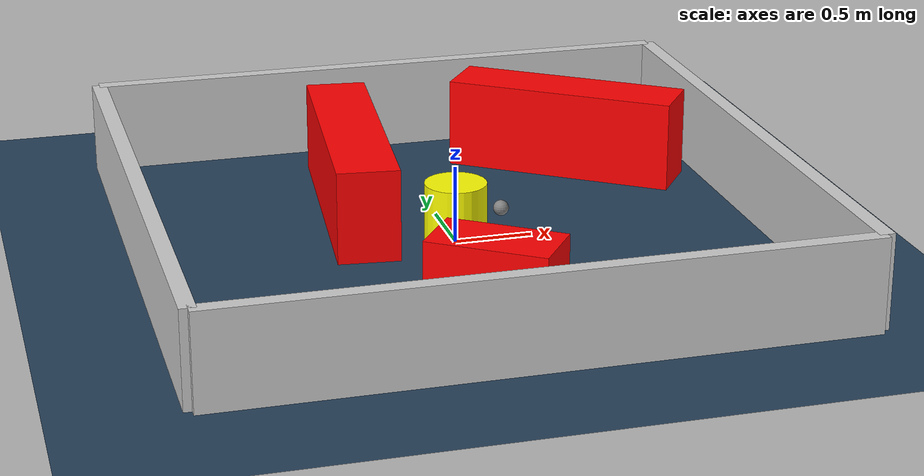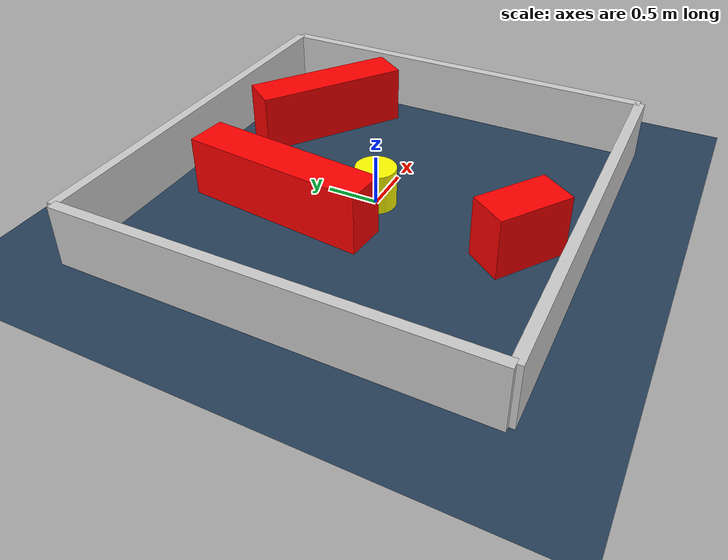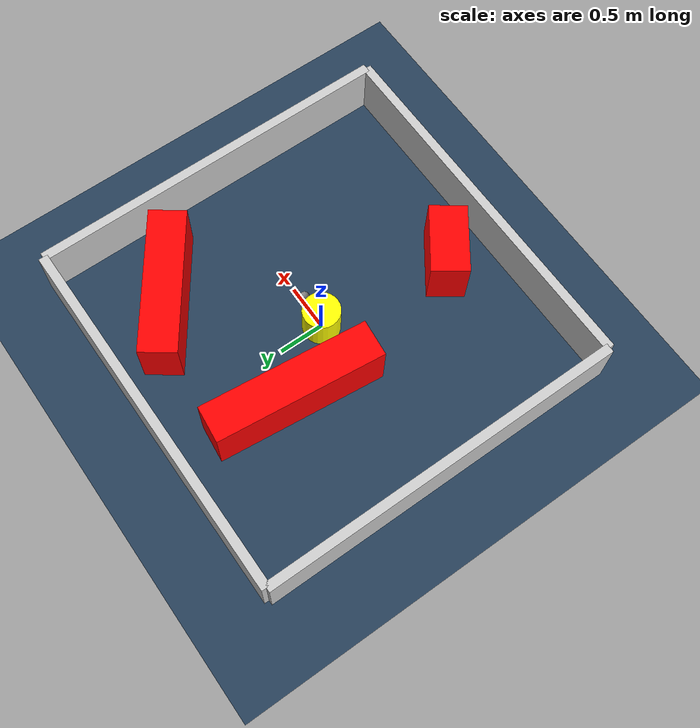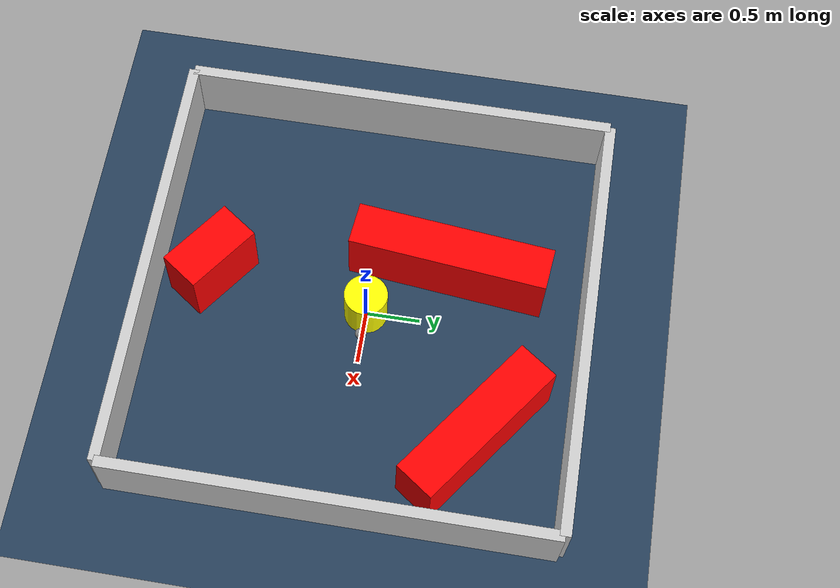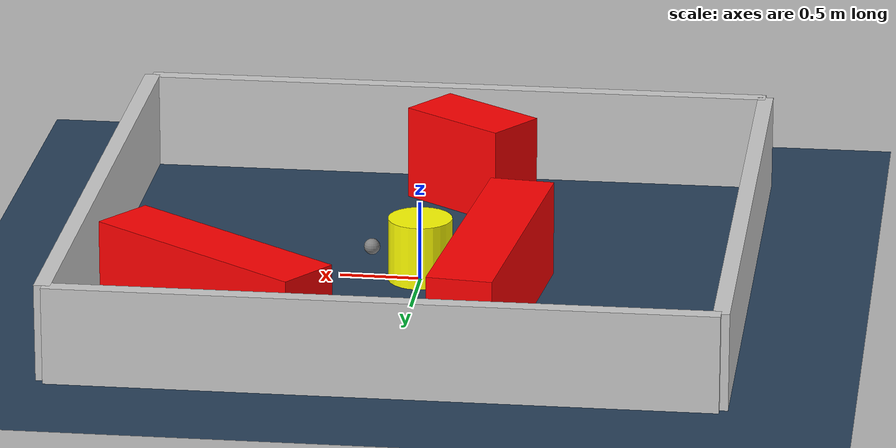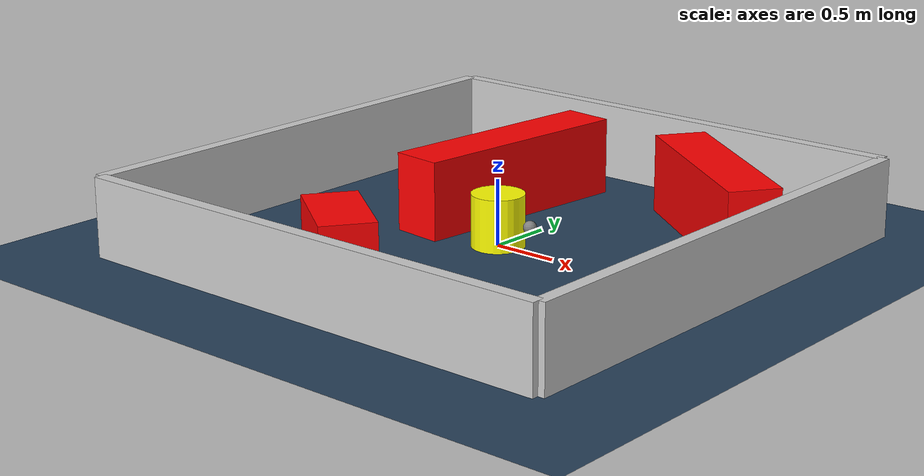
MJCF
<?xml version="1.0" ?>
<mujoco model="generated_environment">
  <option timestep="0.01" integrator="RK4" cone="elliptic"/>
  <default>
    <geom density="1"/>
  </default>
  <asset>
    <texture builtin="gradient" height="3072" rgb1="0.3 0.5 0.7" rgb2="0 0 0" type="skybox" width="512"/>
    <texture builtin="checker" height="300" mark="edge" markrgb="0.8 0.8 0.8" name="groundplane" rgb1="0.2 0.3 0.4" rgb2="0.1 0.2 0.3" type="2d" width="300"/>
    <material name="groundplane" reflectance="0.2" texrepeat="5 5" texture="groundplane" texuniform="true"/>
    <material name="robot" rgba="0.0 1.0 0.0 1"/>
  </asset>
  <worldbody>
    <light dir="0 0 -1" directional="true" pos="0 0 1.5"/>
    <geom condim="4" friction="1.0 0.005 0.001" material="groundplane" name="floor" size="0 0 0.05" type="plane"/>
    <body name="walls">
      <geom name="wall_1" condim="4" pos="-2.0 0.0 0.3" rgba="0.800000011920929 0.800000011920929 0.800000011920929 1.0" size="0.05 2.0 0.3" type="box"/>
      <geom name="wall_2" condim="4" pos="2.0 0.0 0.3" rgba="0.800000011920929 0.800000011920929 0.800000011920929 1.0" size="0.05 2.0 0.3" type="box"/>
      <geom name="wall_3" condim="4" pos="0.0 -2.0 0.3" rgba="0.800000011920929 0.800000011920929 0.800000011920929 1.0" size="2.0 0.05 0.3" type="box"/>
      <geom name="wall_4" condim="4" pos="0.0 2.0 0.3" rgba="0.800000011920929 0.800000011920929 0.800000011920929 1.0" size="2.0 0.05 0.3" type="box"/>
    </body>
    <body name="robot">
      <joint name="joint_x" type="slide" pos="0 0 0" axis="1 0 0"/>
      <joint name="joint_y" type="slide" pos="0 0 0" axis="0 1 0"/>
      <geom name="robot" type="sphere" pos="0.3 0.0 0.2" size="0.05" mass="5." friction="1.0 0.005 0.0001" condim="4" rgba="0.5 0.5 0.5 1.0"/>
      <site name="sensor_ball"/>
    </body>
    <body name="obstacle_movable_1">
      <geom name="obstacle_movable_1" condim="4" pos="0.0 0.0 0.2" euler="0 0 0.0" friction="1.0 0.005 0.001" rgba="1.0 1.0 0.0 1.0" size="0.2 0.2 0.0" type="cylinder" mass="0.1"/>
      <joint type="free"/>
    </body>
    <body name="obstacle_2_static">
      <geom name="obstacle_2_static" condim="4" pos="-0.15991165324727263 -1.4628810186389838 0.3" euler="0 0 144.48944971106113" friction="1.0 0.005 0.001" rgba="1 0 0 1" size="0.3735438941051148 0.2 0.3" type="box"/>
    </body>
    <body name="obstacle_3_static">
      <geom name="obstacle_3_static" condim="4" pos="1.1062691642084275 1.1499964101605646 0.3" euler="0 0 324.34253758956294" friction="1.0 0.005 0.001" rgba="1 0 0 1" size="0.7830922571590375 0.2 0.3" type="box"/>
    </body>
    <body name="obstacle_4_static">
      <geom name="obstacle_4_static" condim="4" pos="-0.5171402785977769 0.7001364426226886 0.3" euler="0 0 84.09721671347646" friction="1.0 0.005 0.001" rgba="1 0 0 1" size="0.9141093125336723 0.2 0.3" type="box"/>
    </body>
  </worldbody>
  <actuator>
    <motor name="actuator_x" joint="joint_x" gear="1" ctrlrange="-1 1"/>
    <motor name="actuator_y" joint="joint_y" gear="1" ctrlrange="-1 1"/>
  </actuator>
</mujoco>
